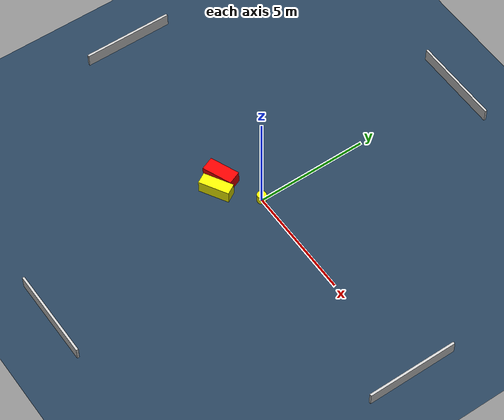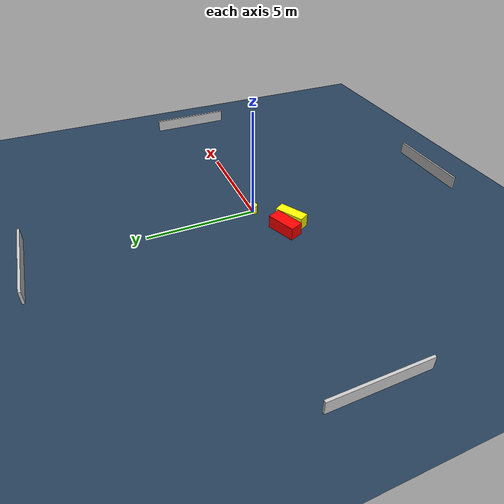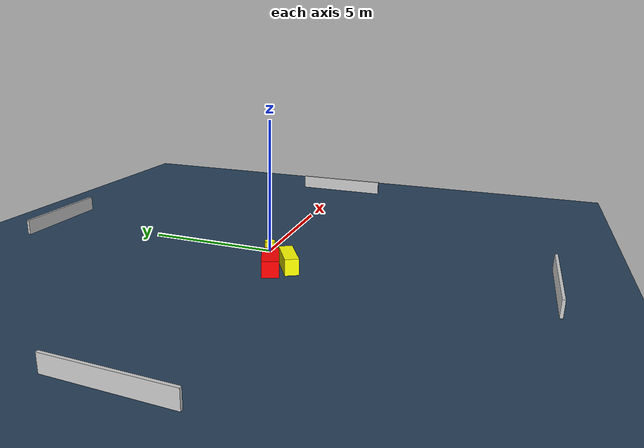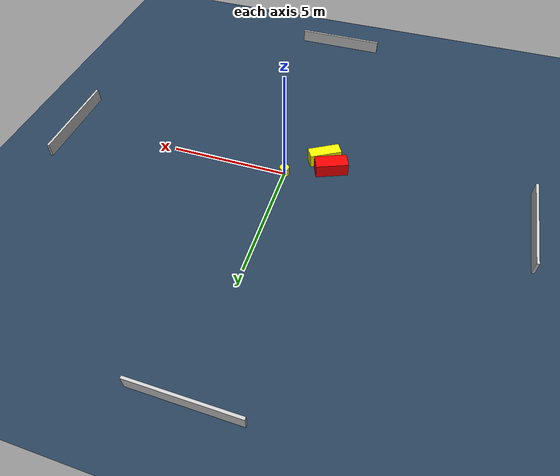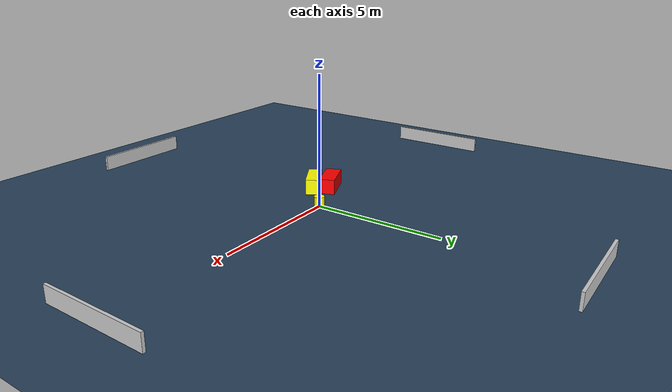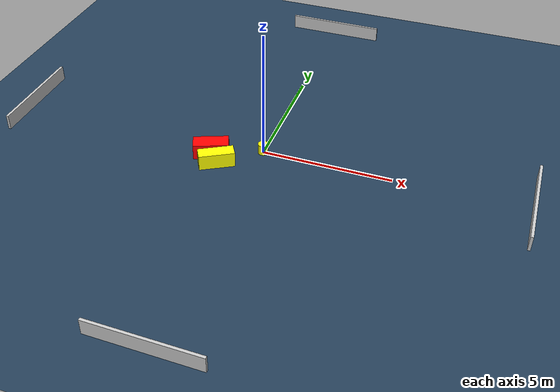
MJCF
<?xml version="1.0" ?>
<mujoco model="generated_environment">
  <option timestep="0.01" integrator="RK4" cone="elliptic"/>
  <default>
    <geom density="1"/>
  </default>
  <asset>
    <texture builtin="gradient" height="3072" name="skybox" rgb1="0.3 0.5 0.7" rgb2="0 0 0" type="skybox" width="512"/>
    <texture builtin="checker" height="300" name="groundplane" rgb1="0.2 0.3 0.4" rgb2="0.1 0.2 0.3" type="2d" width="300"/>
    <material name="groundplane" reflectance="0.2" texrepeat="5 5" texture="groundplane"/>
  </asset>
  <worldbody>
    <light dir="0 0 -1" directional="true" pos="0 0 1.5"/>
    <geom condim="3" friction="0.5 0.005 0.001" material="groundplane" name="floor" pos="0 0 0" size="0 0 0.05" type="plane"/>
    <body name="walls">
      <geom name="wall_1" condim="4" pos="-10.0 0.0 0.3" rgba="0.800000011920929 0.800000011920929 0.800000011920929 1.0" size="0.05 2.0 0.3" type="box"/>
      <geom name="wall_2" condim="4" pos="10.0 0.0 0.3" rgba="0.800000011920929 0.800000011920929 0.800000011920929 1.0" size="0.05 2.0 0.3" type="box"/>
      <geom name="wall_3" condim="4" pos="0.0 -10.0 0.3" rgba="0.800000011920929 0.800000011920929 0.800000011920929 1.0" size="2.0 0.05 0.3" type="box"/>
      <geom name="wall_4" condim="4" pos="0.0 10.0 0.3" rgba="0.800000011920929 0.800000011920929 0.800000011920929 1.0" size="2.0 0.05 0.3" type="box"/>
    </body>
    <body name="robot">
      <joint name="joint_x" type="slide" pos="0 0 0" axis="1 0 0"/>
      <joint name="joint_y" type="slide" pos="0 0 0" axis="0 1 0"/>
      <geom name="robot" type="cylinder" pos="0.0 0.0 0.2" size="0.2 0.2 0.0" mass="5.0" friction="1.0 0.005 0.0001" condim="4" rgba="1.0 1.0 0.0 1.0"/>
    </body>
    <body name="obstacle_1_movable">
      <geom name="obstacle_1_movable" condim="4" pos="-1.3954521279730883 -1.2794076774461258 0.3" euler="0 0 300.1965521215495" friction="0.0 0.005 0.001" rgba="1.0 1.0 0.0 1.0" size="0.2537319762856469 0.676734741931762 0.3" type="box" mass="0.1"/>
      <joint type="free"/>
    </body>
    <body name="obstacle_2_static">
      <geom name="obstacle_2_static" condim="4" pos="-1.821756057931485 -0.7567973575090888 0.3" euler="0 0 112.27645209191348" friction="0.0 0.005 0.001" rgba="1.0 0.0 0.0 1.0" size="0.30736509435604853 0.676807148727226 0.3" type="box"/>
    </body>
  </worldbody>
  <actuator>
    <motor name="actuator_x" joint="joint_x" gear="1" ctrlrange="-1 1"/>
    <motor name="actuator_y" joint="joint_y" gear="1" ctrlrange="-1 1"/>
  </actuator>
</mujoco>
